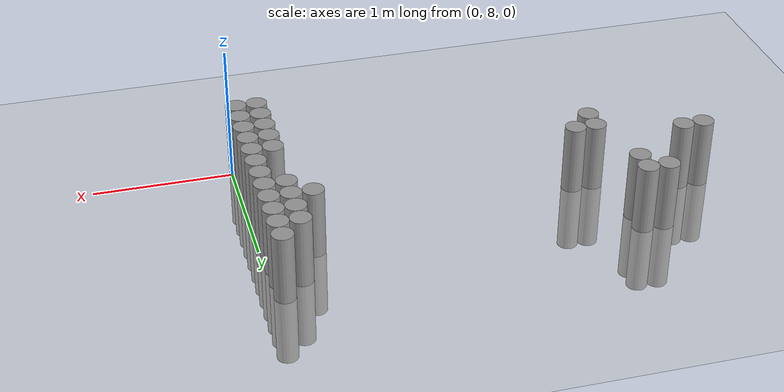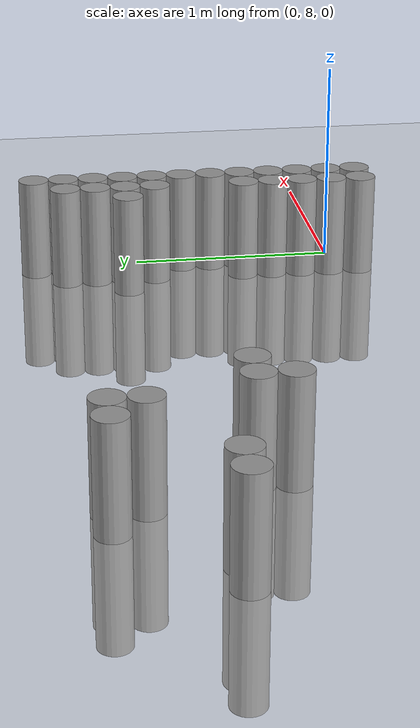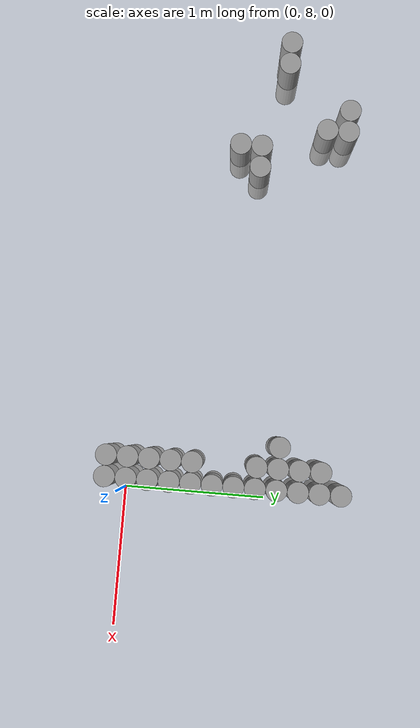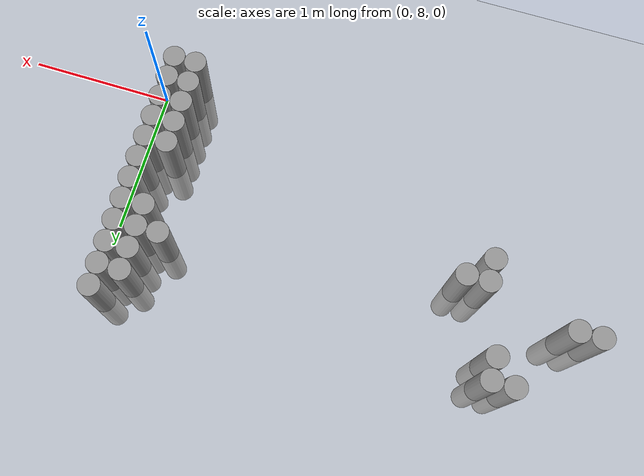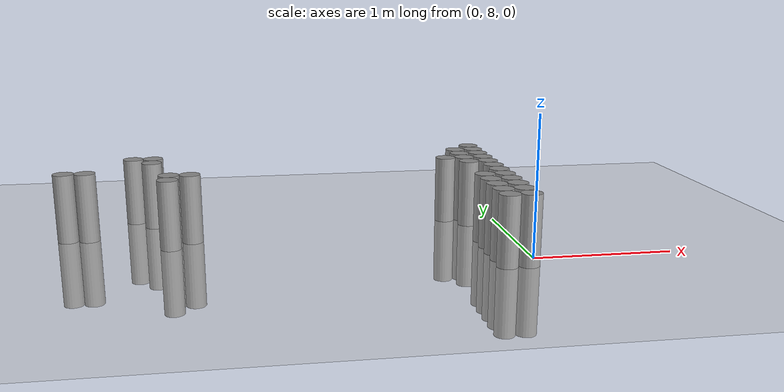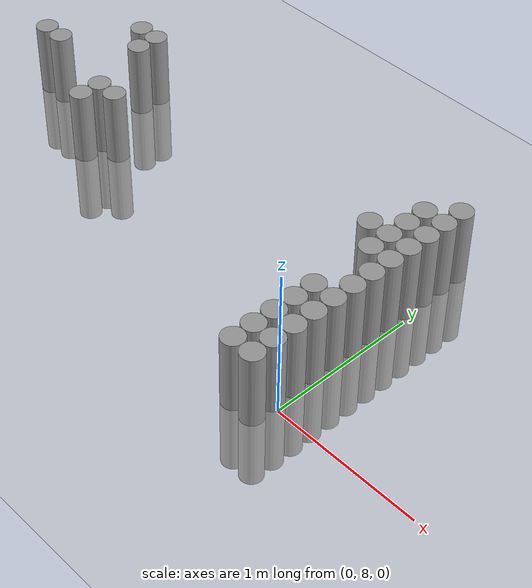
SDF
<sdf version="1.6">
 <world name="default">
  <model name="ground_plane">
   <static>1</static>
   <static>1</static>
   <link name="link">
    <collision name="collision">
     <geometry><plane><normal>0 0 1</normal><size>100 100</size></plane></geometry>
     <surface><friction><ode><mu>100</mu><mu2>50</mu2></ode></friction></surface>
    </collision>
    <visual name="visual">
     <cast_shadows>0</cast_shadows>
     <geometry><plane><normal>0 0 1</normal><size>100 100</size></plane></geometry>
     <material>
      <script><uri>file://media/materials/scripts/gazebo.material</uri><name>Gazebo/Grey</name></script>
     </material>
    </visual>
   </link>
  </model>
  <model name="unit_cylinder_164">
   <static>1</static>
   <pose>-3.225000 8.925000 0.000000 0.000000 0.000000 0.000000</pose>
   <link name="link">
    <inertial>
     <mass>1</mass>
     <inertia><ixx>0.145833</ixx><ixy>0</ixy><ixz>0</ixz><iyy>0.145833</iyy><iyz>0</iyz><izz>0.125</izz></inertia>
    </inertial>
    <collision name="collision">
     <geometry><cylinder><radius>0.075000</radius><length>1</length></cylinder></geometry>
    </collision>
    <visual name="visual">
     <geometry><cylinder><radius>0.075000</radius><length>1</length></cylinder></geometry>
     <material>
      <script><name>Gazebo/Grey</name><uri>file://media/materials/scripts/gazebo.material</uri></script>
     </material>
    </visual>
   </link>
  </model>
  <model name="unit_cylinder_167">
   <static>1</static>
   <pose>-3.075000 8.925000 0.000000 0.000000 0.000000 0.000000</pose>
   <link name="link">
    <inertial>
     <mass>1</mass>
     <inertia><ixx>0.145833</ixx><ixy>0</ixy><ixz>0</ixz><iyy>0.145833</iyy><iyz>0</iyz><izz>0.125</izz></inertia>
    </inertial>
    <collision name="collision">
     <geometry><cylinder><radius>0.075000</radius><length>1</length></cylinder></geometry>
    </collision>
    <visual name="visual">
     <geometry><cylinder><radius>0.075000</radius><length>1</length></cylinder></geometry>
     <material>
      <script><name>Gazebo/Grey</name><uri>file://media/materials/scripts/gazebo.material</uri></script>
     </material>
    </visual>
   </link>
  </model>
  <model name="unit_cylinder_174">
   <static>1</static>
   <pose>-2.775000 9.375000 0.000000 0.000000 0.000000 0.000000</pose>
   <link name="link">
    <inertial>
     <mass>1</mass>
     <inertia><ixx>0.145833</ixx><ixy>0</ixy><ixz>0</ixz><iyy>0.145833</iyy><iyz>0</iyz><izz>0.125</izz></inertia>
    </inertial>
    <collision name="collision">
     <geometry><cylinder><radius>0.075000</radius><length>1</length></cylinder></geometry>
    </collision>
    <visual name="visual">
     <geometry><cylinder><radius>0.075000</radius><length>1</length></cylinder></geometry>
     <material>
      <script><name>Gazebo/Grey</name><uri>file://media/materials/scripts/gazebo.material</uri></script>
     </material>
    </visual>
   </link>
  </model>
  <model name="unit_cylinder_175">
   <static>1</static>
   <pose>-2.625000 9.225000 0.000000 0.000000 0.000000 0.000000</pose>
   <link name="link">
    <inertial>
     <mass>1</mass>
     <inertia><ixx>0.145833</ixx><ixy>0</ixy><ixz>0</ixz><iyy>0.145833</iyy><iyz>0</iyz><izz>0.125</izz></inertia>
    </inertial>
    <collision name="collision">
     <geometry><cylinder><radius>0.075000</radius><length>1</length></cylinder></geometry>
    </collision>
    <visual name="visual">
     <geometry><cylinder><radius>0.075000</radius><length>1</length></cylinder></geometry>
     <material>
      <script><name>Gazebo/Grey</name><uri>file://media/materials/scripts/gazebo.material</uri></script>
     </material>
    </visual>
   </link>
  </model>
  <model name="unit_cylinder_176">
   <static>1</static>
   <pose>-2.625000 9.375000 0.000000 0.000000 0.000000 0.000000</pose>
   <link name="link">
    <inertial>
     <mass>1</mass>
     <inertia><ixx>0.145833</ixx><ixy>0</ixy><ixz>0</ixz><iyy>0.145833</iyy><iyz>0</iyz><izz>0.125</izz></inertia>
    </inertial>
    <collision name="collision">
     <geometry><cylinder><radius>0.075000</radius><length>1</length></cylinder></geometry>
    </collision>
    <visual name="visual">
     <geometry><cylinder><radius>0.075000</radius><length>1</length></cylinder></geometry>
     <material>
      <script><name>Gazebo/Grey</name><uri>file://media/materials/scripts/gazebo.material</uri></script>
     </material>
    </visual>
   </link>
  </model>
  <model name="unit_cylinder_177">
   <static>1</static>
   <pose>-2.475000 8.625000 0.000000 0.000000 0.000000 0.000000</pose>
   <link name="link">
    <inertial>
     <mass>1</mass>
     <inertia><ixx>0.145833</ixx><ixy>0</ixy><ixz>0</ixz><iyy>0.145833</iyy><iyz>0</iyz><izz>0.125</izz></inertia>
    </inertial>
    <collision name="collision">
     <geometry><cylinder><radius>0.075000</radius><length>1</length></cylinder></geometry>
    </collision>
    <visual name="visual">
     <geometry><cylinder><radius>0.075000</radius><length>1</length></cylinder></geometry>
     <material>
      <script><name>Gazebo/Grey</name><uri>file://media/materials/scripts/gazebo.material</uri></script>
     </material>
    </visual>
   </link>
  </model>
  <model name="unit_cylinder_178">
   <static>1</static>
   <pose>-2.475000 8.775000 0.000000 0.000000 0.000000 0.000000</pose>
   <link name="link">
    <inertial>
     <mass>1</mass>
     <inertia><ixx>0.145833</ixx><ixy>0</ixy><ixz>0</ixz><iyy>0.145833</iyy><iyz>0</iyz><izz>0.125</izz></inertia>
    </inertial>
    <collision name="collision">
     <geometry><cylinder><radius>0.075000</radius><length>1</length></cylinder></geometry>
    </collision>
    <visual name="visual">
     <geometry><cylinder><radius>0.075000</radius><length>1</length></cylinder></geometry>
     <material>
      <script><name>Gazebo/Grey</name><uri>file://media/materials/scripts/gazebo.material</uri></script>
     </material>
    </visual>
   </link>
  </model>
  <model name="unit_cylinder_179">
   <static>1</static>
   <pose>-2.325000 8.775000 0.000000 0.000000 0.000000 0.000000</pose>
   <link name="link">
    <inertial>
     <mass>1</mass>
     <inertia><ixx>0.145833</ixx><ixy>0</ixy><ixz>0</ixz><iyy>0.145833</iyy><iyz>0</iyz><izz>0.125</izz></inertia>
    </inertial>
    <collision name="collision">
     <geometry><cylinder><radius>0.075000</radius><length>1</length></cylinder></geometry>
    </collision>
    <visual name="visual">
     <geometry><cylinder><radius>0.075000</radius><length>1</length></cylinder></geometry>
     <material>
      <script><name>Gazebo/Grey</name><uri>file://media/materials/scripts/gazebo.material</uri></script>
     </material>
    </visual>
   </link>
  </model>
  <model name="unit_cylinder_191">
   <static>1</static>
   <pose>-0.375000 9.075000 0.000000 0.000000 0.000000 0.000000</pose>
   <link name="link">
    <inertial>
     <mass>1</mass>
     <inertia><ixx>0.145833</ixx><ixy>0</ixy><ixz>0</ixz><iyy>0.145833</iyy><iyz>0</iyz><izz>0.125</izz></inertia>
    </inertial>
    <collision name="collision">
     <geometry><cylinder><radius>0.075000</radius><length>1</length></cylinder></geometry>
    </collision>
    <visual name="visual">
     <geometry><cylinder><radius>0.075000</radius><length>1</length></cylinder></geometry>
     <material>
      <script><name>Gazebo/Grey</name><uri>file://media/materials/scripts/gazebo.material</uri></script>
     </material>
    </visual>
   </link>
  </model>
  <model name="unit_cylinder_198">
   <static>1</static>
   <pose>-0.225000 7.875000 0.000000 0.000000 0.000000 0.000000</pose>
   <link name="link">
    <inertial>
     <mass>1</mass>
     <inertia><ixx>0.145833</ixx><ixy>0</ixy><ixz>0</ixz><iyy>0.145833</iyy><iyz>0</iyz><izz>0.125</izz></inertia>
    </inertial>
    <collision name="collision">
     <geometry><cylinder><radius>0.075000</radius><length>1</length></cylinder></geometry>
    </collision>
    <visual name="visual">
     <geometry><cylinder><radius>0.075000</radius><length>1</length></cylinder></geometry>
     <material>
      <script><name>Gazebo/Grey</name><uri>file://media/materials/scripts/gazebo.material</uri></script>
     </material>
    </visual>
   </link>
  </model>
  <model name="unit_cylinder_199">
   <static>1</static>
   <pose>-0.225000 8.025000 0.000000 0.000000 0.000000 0.000000</pose>
   <link name="link">
    <inertial>
     <mass>1</mass>
     <inertia><ixx>0.145833</ixx><ixy>0</ixy><ixz>0</ixz><iyy>0.145833</iyy><iyz>0</iyz><izz>0.125</izz></inertia>
    </inertial>
    <collision name="collision">
     <geometry><cylinder><radius>0.075000</radius><length>1</length></cylinder></geometry>
    </collision>
    <visual name="visual">
     <geometry><cylinder><radius>0.075000</radius><length>1</length></cylinder></geometry>
     <material>
      <script><name>Gazebo/Grey</name><uri>file://media/materials/scripts/gazebo.material</uri></script>
     </material>
    </visual>
   </link>
  </model>
  <model name="unit_cylinder_200">
   <static>1</static>
   <pose>-0.225000 8.175000 0.000000 0.000000 0.000000 0.000000</pose>
   <link name="link">
    <inertial>
     <mass>1</mass>
     <inertia><ixx>0.145833</ixx><ixy>0</ixy><ixz>0</ixz><iyy>0.145833</iyy><iyz>0</iyz><izz>0.125</izz></inertia>
    </inertial>
    <collision name="collision">
     <geometry><cylinder><radius>0.075000</radius><length>1</length></cylinder></geometry>
    </collision>
    <visual name="visual">
     <geometry><cylinder><radius>0.075000</radius><length>1</length></cylinder></geometry>
     <material>
      <script><name>Gazebo/Grey</name><uri>file://media/materials/scripts/gazebo.material</uri></script>
     </material>
    </visual>
   </link>
  </model>
  <model name="unit_cylinder_201">
   <static>1</static>
   <pose>-0.225000 8.325000 0.000000 0.000000 0.000000 0.000000</pose>
   <link name="link">
    <inertial>
     <mass>1</mass>
     <inertia><ixx>0.145833</ixx><ixy>0</ixy><ixz>0</ixz><iyy>0.145833</iyy><iyz>0</iyz><izz>0.125</izz></inertia>
    </inertial>
    <collision name="collision">
     <geometry><cylinder><radius>0.075000</radius><length>1</length></cylinder></geometry>
    </collision>
    <visual name="visual">
     <geometry><cylinder><radius>0.075000</radius><length>1</length></cylinder></geometry>
     <material>
      <script><name>Gazebo/Grey</name><uri>file://media/materials/scripts/gazebo.material</uri></script>
     </material>
    </visual>
   </link>
  </model>
  <model name="unit_cylinder_202">
   <static>1</static>
   <pose>-0.225000 8.475000 0.000000 0.000000 0.000000 0.000000</pose>
   <link name="link">
    <inertial>
     <mass>1</mass>
     <inertia><ixx>0.145833</ixx><ixy>0</ixy><ixz>0</ixz><iyy>0.145833</iyy><iyz>0</iyz><izz>0.125</izz></inertia>
    </inertial>
    <collision name="collision">
     <geometry><cylinder><radius>0.075000</radius><length>1</length></cylinder></geometry>
    </collision>
    <visual name="visual">
     <geometry><cylinder><radius>0.075000</radius><length>1</length></cylinder></geometry>
     <material>
      <script><name>Gazebo/Grey</name><uri>file://media/materials/scripts/gazebo.material</uri></script>
     </material>
    </visual>
   </link>
  </model>
  <model name="unit_cylinder_203">
   <static>1</static>
   <pose>-0.225000 8.925000 0.000000 0.000000 0.000000 0.000000</pose>
   <link name="link">
    <inertial>
     <mass>1</mass>
     <inertia><ixx>0.145833</ixx><ixy>0</ixy><ixz>0</ixz><iyy>0.145833</iyy><iyz>0</iyz><izz>0.125</izz></inertia>
    </inertial>
    <collision name="collision">
     <geometry><cylinder><radius>0.075000</radius><length>1</length></cylinder></geometry>
    </collision>
    <visual name="visual">
     <geometry><cylinder><radius>0.075000</radius><length>1</length></cylinder></geometry>
     <material>
      <script><name>Gazebo/Grey</name><uri>file://media/materials/scripts/gazebo.material</uri></script>
     </material>
    </visual>
   </link>
  </model>
  <model name="unit_cylinder_204">
   <static>1</static>
   <pose>-0.225000 9.075000 0.000000 0.000000 0.000000 0.000000</pose>
   <link name="link">
    <inertial>
     <mass>1</mass>
     <inertia><ixx>0.145833</ixx><ixy>0</ixy><ixz>0</ixz><iyy>0.145833</iyy><iyz>0</iyz><izz>0.125</izz></inertia>
    </inertial>
    <collision name="collision">
     <geometry><cylinder><radius>0.075000</radius><length>1</length></cylinder></geometry>
    </collision>
    <visual name="visual">
     <geometry><cylinder><radius>0.075000</radius><length>1</length></cylinder></geometry>
     <material>
      <script><name>Gazebo/Grey</name><uri>file://media/materials/scripts/gazebo.material</uri></script>
     </material>
    </visual>
   </link>
  </model>
  <model name="unit_cylinder_205">
   <static>1</static>
   <pose>-0.225000 9.225000 0.000000 0.000000 0.000000 0.000000</pose>
   <link name="link">
    <inertial>
     <mass>1</mass>
     <inertia><ixx>0.145833</ixx><ixy>0</ixy><ixz>0</ixz><iyy>0.145833</iyy><iyz>0</iyz><izz>0.125</izz></inertia>
    </inertial>
    <collision name="collision">
     <geometry><cylinder><radius>0.075000</radius><length>1</length></cylinder></geometry>
    </collision>
    <visual name="visual">
     <geometry><cylinder><radius>0.075000</radius><length>1</length></cylinder></geometry>
     <material>
      <script><name>Gazebo/Grey</name><uri>file://media/materials/scripts/gazebo.material</uri></script>
     </material>
    </visual>
   </link>
  </model>
  <model name="unit_cylinder_206">
   <static>1</static>
   <pose>-0.225000 9.375000 0.000000 0.000000 0.000000 0.000000</pose>
   <link name="link">
    <inertial>
     <mass>1</mass>
     <inertia><ixx>0.145833</ixx><ixy>0</ixy><ixz>0</ixz><iyy>0.145833</iyy><iyz>0</iyz><izz>0.125</izz></inertia>
    </inertial>
    <collision name="collision">
     <geometry><cylinder><radius>0.075000</radius><length>1</length></cylinder></geometry>
    </collision>
    <visual name="visual">
     <geometry><cylinder><radius>0.075000</radius><length>1</length></cylinder></geometry>
     <material>
      <script><name>Gazebo/Grey</name><uri>file://media/materials/scripts/gazebo.material</uri></script>
     </material>
    </visual>
   </link>
  </model>
  <model name="unit_cylinder_225">
   <static>1</static>
   <pose>-0.075000 7.875000 0.000000 0.000000 0.000000 0.000000</pose>
   <link name="link">
    <inertial>
     <mass>1</mass>
     <inertia><ixx>0.145833</ixx><ixy>0</ixy><ixz>0</ixz><iyy>0.145833</iyy><iyz>0</iyz><izz>0.125</izz></inertia>
    </inertial>
    <collision name="collision">
     <geometry><cylinder><radius>0.075000</radius><length>1</length></cylinder></geometry>
    </collision>
    <visual name="visual">
     <geometry><cylinder><radius>0.075000</radius><length>1</length></cylinder></geometry>
     <material>
      <script><name>Gazebo/Grey</name><uri>file://media/materials/scripts/gazebo.material</uri></script>
     </material>
    </visual>
   </link>
  </model>
  <model name="unit_cylinder_226">
   <static>1</static>
   <pose>-0.075000 8.025000 0.000000 0.000000 0.000000 0.000000</pose>
   <link name="link">
    <inertial>
     <mass>1</mass>
     <inertia><ixx>0.145833</ixx><ixy>0</ixy><ixz>0</ixz><iyy>0.145833</iyy><iyz>0</iyz><izz>0.125</izz></inertia>
    </inertial>
    <collision name="collision">
     <geometry><cylinder><radius>0.075000</radius><length>1</length></cylinder></geometry>
    </collision>
    <visual name="visual">
     <geometry><cylinder><radius>0.075000</radius><length>1</length></cylinder></geometry>
     <material>
      <script><name>Gazebo/Grey</name><uri>file://media/materials/scripts/gazebo.material</uri></script>
     </material>
    </visual>
   </link>
  </model>
  <model name="unit_cylinder_227">
   <static>1</static>
   <pose>-0.075000 8.175000 0.000000 0.000000 0.000000 0.000000</pose>
   <link name="link">
    <inertial>
     <mass>1</mass>
     <inertia><ixx>0.145833</ixx><ixy>0</ixy><ixz>0</ixz><iyy>0.145833</iyy><iyz>0</iyz><izz>0.125</izz></inertia>
    </inertial>
    <collision name="collision">
     <geometry><cylinder><radius>0.075000</radius><length>1</length></cylinder></geometry>
    </collision>
    <visual name="visual">
     <geometry><cylinder><radius>0.075000</radius><length>1</length></cylinder></geometry>
     <material>
      <script><name>Gazebo/Grey</name><uri>file://media/materials/scripts/gazebo.material</uri></script>
     </material>
    </visual>
   </link>
  </model>
  <model name="unit_cylinder_228">
   <static>1</static>
   <pose>-0.075000 8.325000 0.000000 0.000000 0.000000 0.000000</pose>
   <link name="link">
    <inertial>
     <mass>1</mass>
     <inertia><ixx>0.145833</ixx><ixy>0</ixy><ixz>0</ixz><iyy>0.145833</iyy><iyz>0</iyz><izz>0.125</izz></inertia>
    </inertial>
    <collision name="collision">
     <geometry><cylinder><radius>0.075000</radius><length>1</length></cylinder></geometry>
    </collision>
    <visual name="visual">
     <geometry><cylinder><radius>0.075000</radius><length>1</length></cylinder></geometry>
     <material>
      <script><name>Gazebo/Grey</name><uri>file://media/materials/scripts/gazebo.material</uri></script>
     </material>
    </visual>
   </link>
  </model>
  <model name="unit_cylinder_229">
   <static>1</static>
   <pose>-0.075000 8.475000 0.000000 0.000000 0.000000 0.000000</pose>
   <link name="link">
    <inertial>
     <mass>1</mass>
     <inertia><ixx>0.145833</ixx><ixy>0</ixy><ixz>0</ixz><iyy>0.145833</iyy><iyz>0</iyz><izz>0.125</izz></inertia>
    </inertial>
    <collision name="collision">
     <geometry><cylinder><radius>0.075000</radius><length>1</length></cylinder></geometry>
    </collision>
    <visual name="visual">
     <geometry><cylinder><radius>0.075000</radius><length>1</length></cylinder></geometry>
     <material>
      <script><name>Gazebo/Grey</name><uri>file://media/materials/scripts/gazebo.material</uri></script>
     </material>
    </visual>
   </link>
  </model>
  <model name="unit_cylinder_230">
   <static>1</static>
   <pose>-0.075000 8.625000 0.000000 0.000000 0.000000 0.000000</pose>
   <link name="link">
    <inertial>
     <mass>1</mass>
     <inertia><ixx>0.145833</ixx><ixy>0</ixy><ixz>0</ixz><iyy>0.145833</iyy><iyz>0</iyz><izz>0.125</izz></inertia>
    </inertial>
    <collision name="collision">
     <geometry><cylinder><radius>0.075000</radius><length>1</length></cylinder></geometry>
    </collision>
    <visual name="visual">
     <geometry><cylinder><radius>0.075000</radius><length>1</length></cylinder></geometry>
     <material>
      <script><name>Gazebo/Grey</name><uri>file://media/materials/scripts/gazebo.material</uri></script>
     </material>
    </visual>
   </link>
  </model>
  <model name="unit_cylinder_231">
   <static>1</static>
   <pose>-0.075000 8.775000 0.000000 0.000000 0.000000 0.000000</pose>
   <link name="link">
    <inertial>
     <mass>1</mass>
     <inertia><ixx>0.145833</ixx><ixy>0</ixy><ixz>0</ixz><iyy>0.145833</iyy><iyz>0</iyz><izz>0.125</izz></inertia>
    </inertial>
    <collision name="collision">
     <geometry><cylinder><radius>0.075000</radius><length>1</length></cylinder></geometry>
    </collision>
    <visual name="visual">
     <geometry><cylinder><radius>0.075000</radius><length>1</length></cylinder></geometry>
     <material>
      <script><name>Gazebo/Grey</name><uri>file://media/materials/scripts/gazebo.material</uri></script>
     </material>
    </visual>
   </link>
  </model>
  <model name="unit_cylinder_232">
   <static>1</static>
   <pose>-0.075000 8.925000 0.000000 0.000000 0.000000 0.000000</pose>
   <link name="link">
    <inertial>
     <mass>1</mass>
     <inertia><ixx>0.145833</ixx><ixy>0</ixy><ixz>0</ixz><iyy>0.145833</iyy><iyz>0</iyz><izz>0.125</izz></inertia>
    </inertial>
    <collision name="collision">
     <geometry><cylinder><radius>0.075000</radius><length>1</length></cylinder></geometry>
    </collision>
    <visual name="visual">
     <geometry><cylinder><radius>0.075000</radius><length>1</length></cylinder></geometry>
     <material>
      <script><name>Gazebo/Grey</name><uri>file://media/materials/scripts/gazebo.material</uri></script>
     </material>
    </visual>
   </link>
  </model>
  <model name="unit_cylinder_233">
   <static>1</static>
   <pose>-0.075000 9.075000 0.000000 0.000000 0.000000 0.000000</pose>
   <link name="link">
    <inertial>
     <mass>1</mass>
     <inertia><ixx>0.145833</ixx><ixy>0</ixy><ixz>0</ixz><iyy>0.145833</iyy><iyz>0</iyz><izz>0.125</izz></inertia>
    </inertial>
    <collision name="collision">
     <geometry><cylinder><radius>0.075000</radius><length>1</length></cylinder></geometry>
    </collision>
    <visual name="visual">
     <geometry><cylinder><radius>0.075000</radius><length>1</length></cylinder></geometry>
     <material>
      <script><name>Gazebo/Grey</name><uri>file://media/materials/scripts/gazebo.material</uri></script>
     </material>
    </visual>
   </link>
  </model>
  <model name="unit_cylinder_234">
   <static>1</static>
   <pose>-0.075000 9.225000 0.000000 0.000000 0.000000 0.000000</pose>
   <link name="link">
    <inertial>
     <mass>1</mass>
     <inertia><ixx>0.145833</ixx><ixy>0</ixy><ixz>0</ixz><iyy>0.145833</iyy><iyz>0</iyz><izz>0.125</izz></inertia>
    </inertial>
    <collision name="collision">
     <geometry><cylinder><radius>0.075000</radius><length>1</length></cylinder></geometry>
    </collision>
    <visual name="visual">
     <geometry><cylinder><radius>0.075000</radius><length>1</length></cylinder></geometry>
     <material>
      <script><name>Gazebo/Grey</name><uri>file://media/materials/scripts/gazebo.material</uri></script>
     </material>
    </visual>
   </link>
  </model>
  <model name="unit_cylinder_235">
   <static>1</static>
   <pose>-0.075000 9.375000 0.000000 0.000000 0.000000 0.000000</pose>
   <link name="link">
    <inertial>
     <mass>1</mass>
     <inertia><ixx>0.145833</ixx><ixy>0</ixy><ixz>0</ixz><iyy>0.145833</iyy><iyz>0</iyz><izz>0.125</izz></inertia>
    </inertial>
    <collision name="collision">
     <geometry><cylinder><radius>0.075000</radius><length>1</length></cylinder></geometry>
    </collision>
    <visual name="visual">
     <geometry><cylinder><radius>0.075000</radius><length>1</length></cylinder></geometry>
     <material>
      <script><name>Gazebo/Grey</name><uri>file://media/materials/scripts/gazebo.material</uri></script>
     </material>
    </visual>
   </link>
  </model>
  <model name="unit_cylinder_236">
   <static>1</static>
   <pose>-0.075000 9.525000 0.000000 0.000000 0.000000 0.000000</pose>
   <link name="link">
    <inertial>
     <mass>1</mass>
     <inertia><ixx>0.145833</ixx><ixy>0</ixy><ixz>0</ixz><iyy>0.145833</iyy><iyz>0</iyz><izz>0.125</izz></inertia>
    </inertial>
    <collision name="collision">
     <geometry><cylinder><radius>0.075000</radius><length>1</length></cylinder></geometry>
    </collision>
    <visual name="visual">
     <geometry><cylinder><radius>0.075000</radius><length>1</length></cylinder></geometry>
     <material>
      <script><name>Gazebo/Grey</name><uri>file://media/materials/scripts/gazebo.material</uri></script>
     </material>
    </visual>
   </link>
  </model>
 </world>
</sdf>
